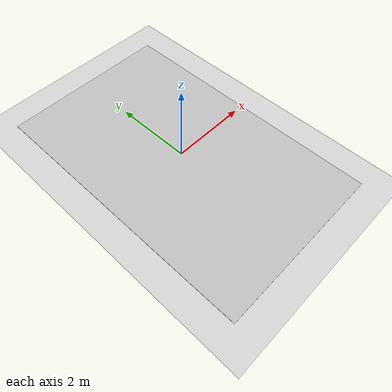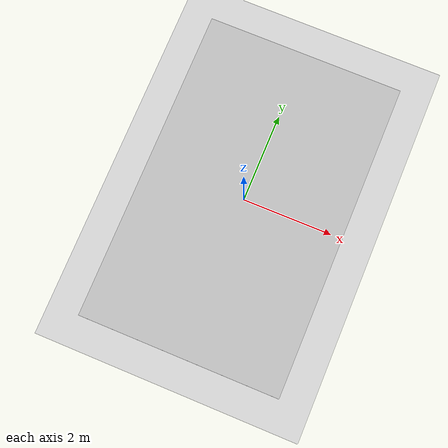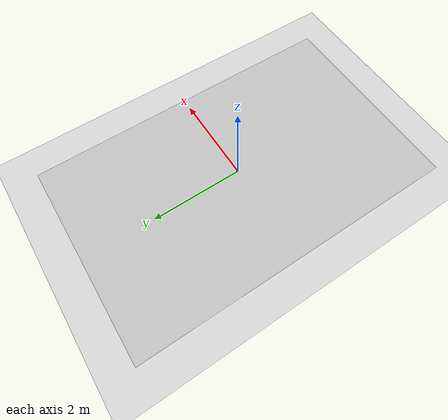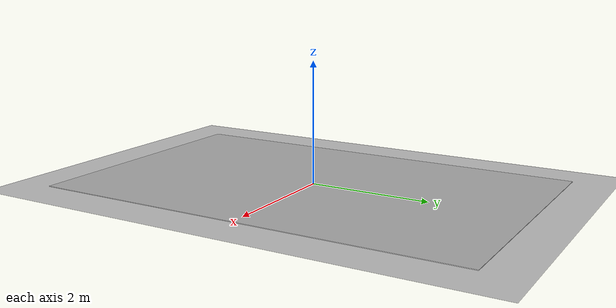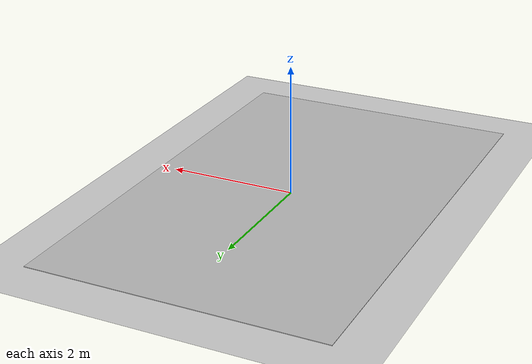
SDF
<?xml version="1.0"?>
<sdf version="1.4">
<world name="racecar_parking_1">

  <include>
    <uri>model://sun</uri>
  </include>

  <gui>
    <camera name='main'>
      <pose>0 0 10 0 1.571 0</pose>
    </camera>
  </gui>

  <model name="ground_plane">
    <static>true</static>
    <link name="link">
      <collision name="collision">
        <geometry>
          <plane>
            <normal>0 0 1</normal>
            <size>150 150</size>
          </plane>
        </geometry>
        <surface>
          <friction>
            <ode>
              <mu>100</mu>
              <mu2>50</mu2>
            </ode>
          </friction>
        </surface>
      </collision>
      <visual name="visual">
        <cast_shadows>false</cast_shadows>
        <geometry>
          <plane>
            <normal>0 0 1</normal>
            <size>150 150</size>
          </plane>
        </geometry>
        <material>
          <script>
            <uri>file://media/materials/scripts/gazebo.material</uri>
            <name>Gazebo/Grey</name>
          </script>
        </material>
      </visual>
    </link>
  </model>

  <include>
    <uri>model://racecar_description/models/robocar_track</uri>
    <pose>0 0 0 0 0 0</pose>
  </include>

</world>
</sdf>

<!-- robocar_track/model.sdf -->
<sdf version="1.4">
<model name="robocar_track">
  <pose>0 0 0.01 0 0 0</pose>
    <link name="link">
      <visual name="visual">
        <geometry>
          <box>
            <size>4.5 7.1685 0.01</size>
          </box>
        </geometry>
        <material>
          <script>
            <uri>model://racecar_description/materials/robocar_track.material</uri>
            <name>Robocar_track</name>
          </script>
        </material>
      </visual>
    </link>
  </model>
</sdf>
